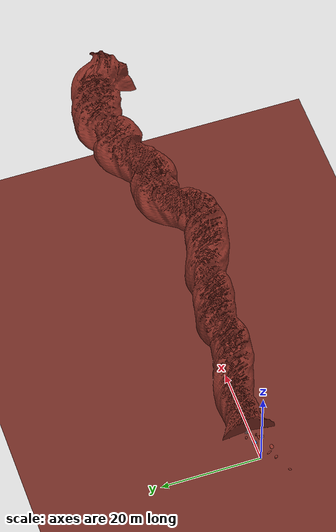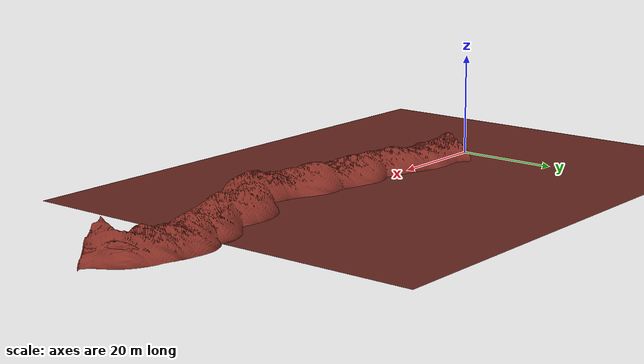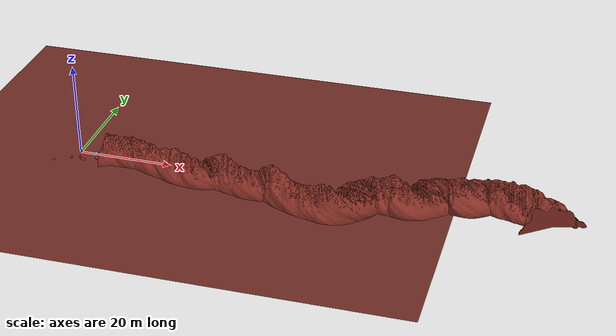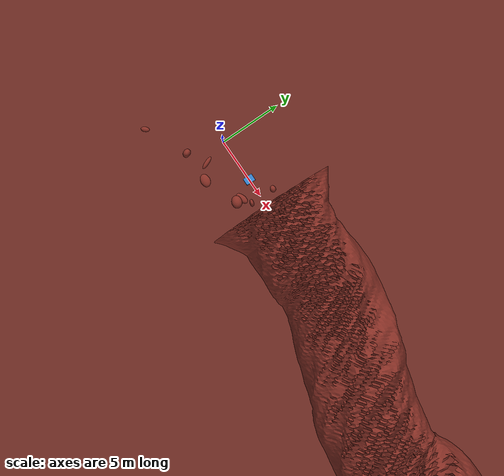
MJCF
<?xml version="1.0" encoding="utf-8"?>
<!--
  Cave Search-and-Rescue Environment  — MuJoCo SAR Training Scene
  Generated by cave_simulation_system.py
  Entry (3.5, 0.1) → Exit (-7.5, -7.1)
-->
<mujoco model="cave_sar">

  <compiler angle="degree" meshdir="meshes/" autolimits="true"/>

  <option gravity="0 0 -9.81" timestep="0.002" integrator="RK4" cone="pyramidal"/>

  <visual>
    <rgba haze="0.10 0.04 0.03 1"/>
    <quality shadowsize="4096"/>
    <map stiffness="100" shadowscale="0.4"/>
    <global fovy="65"/>
  </visual>

  <asset>
    <mesh name="cave_inner" file="cave_inner_seed_1000.stl" scale="1 1 1"/>
    <mesh name="cave_outer" file="cave_outer_seed_1000.stl" scale="1 1 1"/>

    <material name="cave_rock"
      rgba="0.52 0.18 0.14 1.0" specular="0.08" shininess="0.04" reflectance="0.01"/>
    <material name="cave_floor"
      rgba="0.42 0.16 0.13 1.0" specular="0.03" shininess="0.008"/>

    <texture type="skybox" builtin="flat"
      rgb1="0.03 0.03 0.05" rgb2="0.01 0.01 0.02"
      width="512" height="512"/>
  </asset>

  <worldbody>

    <!-- ── Cave interior lighting ────────────────────────────────── -->
    <light name="fill_0"
      pos="8.1 0.0 2.4"
      diffuse="0.981 0.673 0.561"
      castshadow="false"/>
    <light name="fill_1"
      pos="2.1 -1.8 2.4"
      diffuse="1.007 0.689 0.572"
      castshadow="false"/>
    <light name="fill_2"
      pos="-2.5 -4.7 2.4"
      diffuse="0.933 0.636 0.530"
      castshadow="false"/>
    <light name="fill_3"
      pos="3.5 0.0 2.4"
      diffuse="1.166 0.795 0.657"
      castshadow="false"/>

    <!-- ── Ground plane ─────────────────────────────────────────── -->
    <geom name="ground" type="plane"
      pos="0 0 0.000" size="80 80 0.1"
      material="cave_floor"
      contype="1" conaffinity="1"
      friction="1.0 0.005 0.0001"/>

    <!-- ── Cave inner wall (collision + visual) ──────────────────── -->
    <geom name="cave_wall_inner" type="mesh" mesh="cave_inner"
      material="cave_rock"
      contype="1" conaffinity="1"
      friction="0.85 0.005 0.0001"/>

    <!-- ── Cave outer shell (visual only) ───────────────────────── -->
    <geom name="cave_wall_outer" type="mesh" mesh="cave_outer"
      material="cave_rock" contype="0" conaffinity="0"/>

    <!-- ── Rock obstacles ───────────────────────────────────────── -->
    <geom name="rock_000" type="ellipsoid" pos="-0.874 -2.779 0.365" size="0.283 0.354 0.365" euler="0.0 0.0 23.7" material="cave_rock" contype="1" conaffinity="1"/>
    <geom name="rock_001" type="ellipsoid" pos="5.099 1.096 0.261" size="0.227 0.269 0.261" euler="0.0 0.0 77.2" material="cave_rock" contype="1" conaffinity="1"/>
    <geom name="rock_002" type="ellipsoid" pos="4.355 -1.266 0.172" size="0.272 0.522 0.172" euler="0.0 0.0 106.5" material="cave_rock" contype="1" conaffinity="1"/>
    <geom name="rock_003" type="ellipsoid" pos="1.652 -2.794 0.208" size="0.522 0.376 0.208" euler="0.0 0.0 171.8" material="cave_rock" contype="1" conaffinity="1"/>
    <geom name="rock_004" type="ellipsoid" pos="0.591 -1.923 0.159" size="0.168 0.547 0.159" euler="0.0 0.0 22.3" material="cave_rock" contype="1" conaffinity="1"/>
    <geom name="rock_005" type="ellipsoid" pos="5.081 -0.846 0.358" size="0.293 0.159 0.358" euler="0.0 0.0 162.8" material="cave_rock" contype="1" conaffinity="1"/>
    <geom name="rock_006" type="ellipsoid" pos="-4.221 -4.355 0.156" size="0.342 0.200 0.156" euler="0.0 0.0 44.0" material="cave_rock" contype="1" conaffinity="1"/>
    <geom name="rock_007" type="ellipsoid" pos="4.363 -1.749 0.310" size="0.408 0.497 0.310" euler="0.0 0.0 70.4" material="cave_rock" contype="1" conaffinity="1"/>

    <!-- ── Survivors ────────────────────────────────────────────── -->
  <!-- Survivor 0: lying, vis=high, occ=10% -->
  <body name="survivor_0" pos="6.786 0.077 0.050">
    <geom name="surv0_torso" type="capsule" pos="0.0000 -0.0000 0.1300" size="0.1300 0.5500" euler="90.0000 0.0000 236.5244" rgba="0.95 0.95 0.95 1.0" contype="0" conaffinity="0"/>
    <geom name="surv0_head" type="sphere" pos="0.2669 -0.1765 0.1800" size="0.1100" euler="0.0000 0.0000 236.5244" rgba="0.95 0.95 0.95 1.0" contype="0" conaffinity="0"/>
    <geom name="surv0_upper_arm_L" type="capsule" pos="-0.1269 -0.1918 0.0700" size="0.0500 0.2800" euler="90.0000 0.0000 236.5244" rgba="0.95 0.95 0.95 1.0" contype="0" conaffinity="0"/>
    <geom name="surv0_upper_arm_R" type="capsule" pos="0.1269 0.1918 0.0700" size="0.0500 0.2800" euler="90.0000 0.0000 236.5244" rgba="0.95 0.95 0.95 1.0" contype="0" conaffinity="0"/>
    <geom name="surv0_lower_arm_L" type="capsule" pos="-0.3604 -0.0374 0.0700" size="0.0400 0.2400" euler="90.0000 0.0000 236.5244" rgba="0.95 0.95 0.95 1.0" contype="0" conaffinity="0"/>
    <geom name="surv0_lower_arm_R" type="capsule" pos="-0.1067 0.3463 0.0700" size="0.0400 0.2400" euler="90.0000 0.0000 236.5244" rgba="0.95 0.95 0.95 1.0" contype="0" conaffinity="0"/>
    <geom name="surv0_thigh_L" type="capsule" pos="-0.3471 0.1096 0.0700" size="0.0700 0.4000" euler="90.0000 0.0000 236.5244" rgba="0.95 0.95 0.95 1.0" contype="0" conaffinity="0"/>
    <geom name="surv0_thigh_R" type="capsule" pos="-0.2368 0.2765 0.0700" size="0.0700 0.4000" euler="90.0000 0.0000 236.5244" rgba="0.95 0.95 0.95 1.0" contype="0" conaffinity="0"/>
    <geom name="surv0_shin_L" type="capsule" pos="-0.7058 0.3468 0.0700" size="0.0500 0.3600" euler="90.0000 0.0000 236.5244" rgba="0.95 0.95 0.95 1.0" contype="0" conaffinity="0"/>
    <geom name="surv0_shin_R" type="capsule" pos="-0.5955 0.5136 0.0700" size="0.0500 0.3600" euler="90.0000 0.0000 236.5244" rgba="0.95 0.95 0.95 1.0" contype="0" conaffinity="0"/>
  </body>
  <!-- Survivor 1: slumped, vis=high, occ=15% -->
  <body name="survivor_1" pos="8.242 0.085 0.150">
    <geom name="surv1_torso" type="capsule" pos="-0.0000 0.0000 0.2200" size="0.1300 0.2800" euler="40.0000 0.0000 92.3922" rgba="0.95 0.95 0.95 1.0" contype="0" conaffinity="0"/>
    <geom name="surv1_head" type="sphere" pos="-0.3176 -0.0633 0.4500" size="0.1100" euler="0.0000 0.0000 92.3922" rgba="0.95 0.95 0.95 1.0" contype="0" conaffinity="0"/>
    <geom name="surv1_upper_arm_L" type="capsule" pos="-0.1915 0.2722 0.3800" size="0.0500 0.2800" euler="60.0000 15.0000 92.3922" rgba="0.95 0.95 0.95 1.0" contype="0" conaffinity="0"/>
    <geom name="surv1_upper_arm_R" type="capsule" pos="0.0604 -0.2477 0.2000" size="0.0500 0.2800" euler="80.0000 -5.0000 92.3922" rgba="0.95 0.95 0.95 1.0" contype="0" conaffinity="0"/>
    <geom name="surv1_lower_arm_L" type="capsule" pos="-0.3972 0.4038 0.1400" size="0.0400 0.2200" euler="90.0000 10.0000 92.3922" rgba="0.95 0.95 0.95 1.0" contype="0" conaffinity="0"/>
    <geom name="surv1_lower_arm_R" type="capsule" pos="0.3089 -0.2073 0.0800" size="0.0400 0.2200" euler="90.0000 -8.0000 92.3922" rgba="0.95 0.95 0.95 1.0" contype="0" conaffinity="0"/>
    <geom name="surv1_thigh_L" type="capsule" pos="0.1948 0.1282 0.1000" size="0.0700 0.3800" euler="80.0000 8.0000 92.3922" rgba="0.95 0.95 0.95 1.0" contype="0" conaffinity="0"/>
    <geom name="surv1_thigh_R" type="capsule" pos="0.1049 -0.1157 0.1000" size="0.0700 0.3800" euler="75.0000 -5.0000 92.3922" rgba="0.95 0.95 0.95 1.0" contype="0" conaffinity="0"/>
    <geom name="surv1_shin_L" type="capsule" pos="0.5911 0.2249 0.0800" size="0.0500 0.3400" euler="90.0000 0.0000 92.3922" rgba="0.95 0.95 0.95 1.0" contype="0" conaffinity="0"/>
    <geom name="surv1_shin_R" type="capsule" pos="0.5029 -0.0591 0.0800" size="0.0500 0.3400" euler="90.0000 0.0000 92.3922" rgba="0.95 0.95 0.95 1.0" contype="0" conaffinity="0"/>
  </body>
  <!-- Survivor 2: lying, vis=high, occ=10% -->
  <body name="survivor_2" pos="8.548 0.169 0.050">
    <geom name="surv2_torso" type="capsule" pos="0.0000 -0.0000 0.1300" size="0.1300 0.5500" euler="90.0000 0.0000 229.9076" rgba="0.95 0.95 0.95 1.0" contype="0" conaffinity="0"/>
    <geom name="surv2_head" type="sphere" pos="0.2448 -0.2061 0.1800" size="0.1100" euler="0.0000 0.0000 229.9076" rgba="0.95 0.95 0.95 1.0" contype="0" conaffinity="0"/>
    <geom name="surv2_upper_arm_L" type="capsule" pos="-0.1481 -0.1760 0.0700" size="0.0500 0.2800" euler="90.0000 0.0000 229.9076" rgba="0.95 0.95 0.95 1.0" contype="0" conaffinity="0"/>
    <geom name="surv2_upper_arm_R" type="capsule" pos="0.1481 0.1760 0.0700" size="0.0500 0.2800" euler="90.0000 0.0000 229.9076" rgba="0.95 0.95 0.95 1.0" contype="0" conaffinity="0"/>
    <geom name="surv2_lower_arm_L" type="capsule" pos="-0.3623 0.0044 0.0700" size="0.0400 0.2400" euler="90.0000 0.0000 229.9076" rgba="0.95 0.95 0.95 1.0" contype="0" conaffinity="0"/>
    <geom name="surv2_lower_arm_R" type="capsule" pos="-0.0661 0.3563 0.0700" size="0.0400 0.2400" euler="90.0000 0.0000 229.9076" rgba="0.95 0.95 0.95 1.0" contype="0" conaffinity="0"/>
    <geom name="surv2_thigh_L" type="capsule" pos="-0.3322 0.1489 0.0700" size="0.0700 0.4000" euler="90.0000 0.0000 229.9076" rgba="0.95 0.95 0.95 1.0" contype="0" conaffinity="0"/>
    <geom name="surv2_thigh_R" type="capsule" pos="-0.2034 0.3019 0.0700" size="0.0700 0.4000" euler="90.0000 0.0000 229.9076" rgba="0.95 0.95 0.95 1.0" contype="0" conaffinity="0"/>
    <geom name="surv2_shin_L" type="capsule" pos="-0.6611 0.4258 0.0700" size="0.0500 0.3600" euler="90.0000 0.0000 229.9076" rgba="0.95 0.95 0.95 1.0" contype="0" conaffinity="0"/>
    <geom name="surv2_shin_R" type="capsule" pos="-0.5323 0.5788 0.0700" size="0.0500 0.3600" euler="90.0000 0.0000 229.9076" rgba="0.95 0.95 0.95 1.0" contype="0" conaffinity="0"/>
  </body>

    <!-- ── Dataset camera aimed at visible survivor/cave corridor ──── -->
    <camera name="dataset_cam"
      pos="3.888 -0.062 0.656"
      xyaxes="0.047883 -0.998853 0.000000 0.070798 0.003394 0.997485"
      fovy="80"/>
    <light name="dataset_headlamp"
      pos="3.888 -0.062 0.656"
      dir="0.9963 0.0478 -0.0709"
      diffuse="1.45 1.28 0.98"
      specular="0.10 0.10 0.08"
      cutoff="65"
      exponent="6"
      castshadow="false"/>

    <!-- ── Robot / camera body ──────────────────────────────────── -->
    <!--  Replace with your full humanoid MJCF.                       -->
    <body name="robot" pos="3.500 0.000 0.320">
      <freejoint name="robot_root"/>
      <geom name="robot_body" type="box"
        size="0.28 0.38 0.14" rgba="0.20 0.50 0.80 1.0"
        mass="5.0" contype="1" conaffinity="1"/>
      <site name="imu_site"   pos="0 0  0.15"  size="0.01"/>
      <site name="lidar_site" pos="0 0.37 0.04" size="0.01"/>
      <light name="robot_headlamp"
        pos="0 0.42 0.58"
        dir="0 1 -0.18"
        diffuse="1.35 1.20 0.92"
        specular="0.10 0.10 0.08"
        directional="true"
        castshadow="false"/>
      <light name="robot_soft_fill"
        pos="0 0.15 0.85"
        diffuse="0.50 0.44 0.34"
        castshadow="false"/>
      <!-- Robot-eye camera — used by dataset renderer -->
      <camera name="robot_cam"
        pos="0 0.35 0.55"
        xyaxes="1 0 0 0 0 1"
        fovy="80"/>
    </body>

  </worldbody>

  <sensor>
    <accelerometer name="accel"      site="imu_site"/>
    <gyro          name="gyro"       site="imu_site"/>
    <magnetometer  name="mag"        site="imu_site"/>
    <rangefinder   name="range_front" site="lidar_site"/>
    <framepos      name="pos_sensor" objtype="site" objname="imu_site"/>
  </sensor>

  <keyframe>
    <key name="spawn_entry"
         qpos="3.500 0.000 0.320  1 0 0 0"/>
  </keyframe>

</mujoco>
